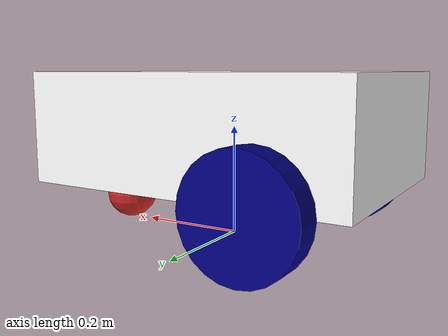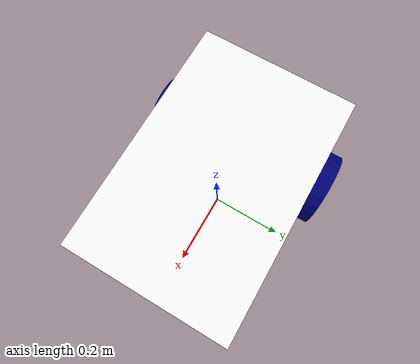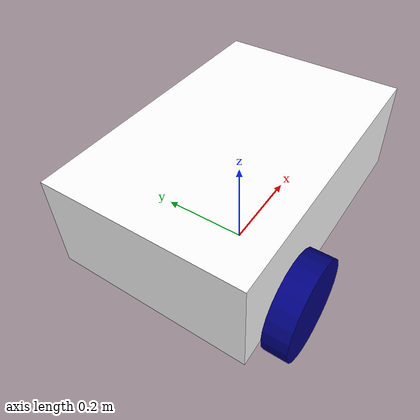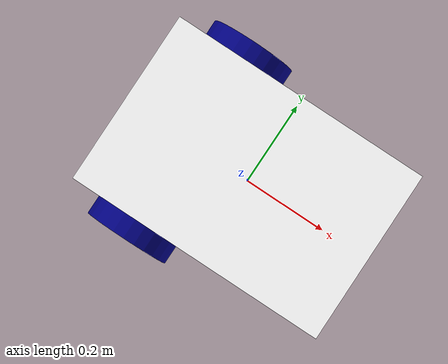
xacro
<?xml version="1.0"?>
<robot xmlns:xacro="http://www.ros.org/wiki/xacro">
  <xacro:include filename="inertial_micros.xacro"/>
  <!-- Define material only once -->
    <material name="white">
        <color rgba="1 1 1 1"/>
    </material>
    <material name="black">
        <color rgba="0 0 0 1"/>
    </material>
    <material name="blue">
        <color rgba="0 0 0.5 1" />
    </material>
    <material name="red">
        <color rgba="1 0 0 1" />
    </material>
    <material name="green">
        <color rgba="0 1 0 1"/>
    </material>

    <!--start link llllllllllllllllllllllllllllllllllllllllllllllllllll -->
    <link name="base_footprint" />

    <link name="base_link">
        <visual>
            <geometry>
                <box size="0.6 0.4 0.2"/>
            </geometry>
            <origin xyz="0 0 0.1" rpy="0 0 0"/>
            <!-- Apply material -->
            <material name="white"/>
        </visual>
        <collision>
            <geometry>
                <box size="0.6 0.4 0.2"/>
            </geometry>
            <origin xyz="0 0 0.1" rpy="0 0 0"/>
        </collision>
        <xacro:inertial_box mass="0.5" x="0.6" y="0.4" z="0.2">
          <origin xyz="0 0 0.1" rpy="0 0 0"/>
        </xacro:inertial_box>
    </link>

    <gazebo reference="base_link">
        <material>Gazebo/White</material>
    </gazebo>

 <!-- right wheeel -->
    <link name="right_wheel">
      <visual>
          <geometry>
            <cylinder radius="0.1" length="0.05"/>
          </geometry>
        <origin xyz="0 0 0" rpy="1.57 0 0"/>
        <material name="blue"/>
      </visual>
      <collision>
        <geometry>
          <cylinder radius="0.1" length="0.05"/>
        </geometry>
        <origin xyz="0 0 0" rpy="1.57 0 0"/>
      </collision>
      <xacro:inertial_cylinder mass="0.2" radius="0.1" length="0.05">
        <origin xyz="0 0 0" rpy="1.57 0 0"/>
      </xacro:inertial_cylinder>
    </link>

    <gazebo reference="right_wheel">
        <material>Gazebo/Blue</material>
    </gazebo>

<!-- left wheeeel -->
    <link name="left_wheel">
        <visual>
            <geometry>
                <cylinder radius="0.1" length="0.05"/>
            </geometry>
            <origin xyz="0 0 0" rpy="1.57 0 0"/>
            <material name="blue"/>
        </visual>
        <collision>
            <geometry>
                <cylinder radius="0.1" length="0.05"/>
            </geometry>
            <origin xyz="0 0 0" rpy="1.57 0 0"/>
        </collision>
        <xacro:inertial_cylinder mass="0.2" radius="0.1" length="0.05">
          <origin xyz="0 0 0" rpy="1.57 0 0"/>
        </xacro:inertial_cylinder>
    </link>

    <gazebo reference="left_wheel">
        <material>Gazebo/Blue</material>
    </gazebo>

    <link name="first_while">
        <visual>
            <geometry>
                    <sphere radius="0.05"/>
            </geometry>
            <origin xyz="0 0 0"/>
        </visual>
        <collision>
            <geometry>
                    <sphere radius="0.05"/>
            </geometry>
            <origin xyz="0 0 0"/>
        </collision>
        <xacro:inertial_sphere mass="0.1" radius="0.05">
          <origin xyz="0.0 0.0 0.0"/>
        </xacro:inertial_sphere>
    </link>

    <gazebo reference="first_while">
        <material>Gazebo/Red</material>
        <mu1 value="0.001"/>
        <mu2 value="0.001"/>
    </gazebo>

<!--lllllllllllllllllllllllllllllllllllllllllllllllllllllllllllllllllllllllink eded lllllllllllllllllllllllllllllllllll-->

    <joint name="base_right_wheel_joint" type="continuous">
        <parent link="base_link"/>
        <child link="right_wheel"/>
        <origin xyz="-0.15 -0.225 0" rpy="0 0 0"/>
        <axis xyz="0 1 0"/>
    </joint>
    <joint name="base_left_wheel_joint" type="continuous">
        <parent link="base_link"/>
        <child link="left_wheel"/>
        <origin xyz="-0.15 0.225 0" rpy="0 0 0"/>
        <axis xyz="0 1 0"/>
    </joint>
    <joint name="base_first_while_joint" type="fixed">
        <parent link="base_link"/>
        <child link="first_while"/>
        <origin xyz="0.25 0 -0.05"/>
    </joint>
    <joint name="base_joint" type="fixed">
        <parent link="base_footprint"/>
        <child link="base_link" />
        <origin xyz="0 0 0.1"/>
    </joint>

</robot>
